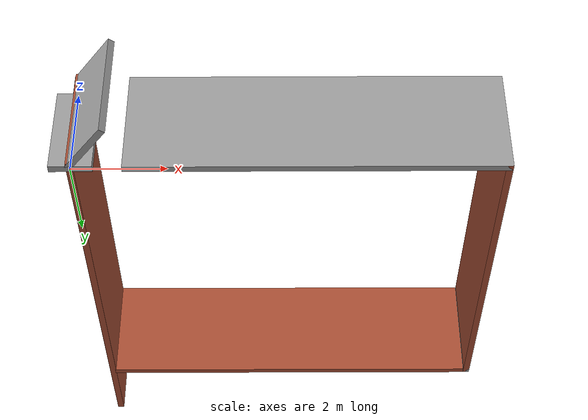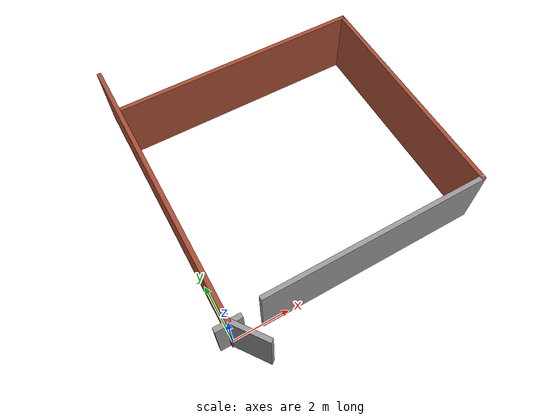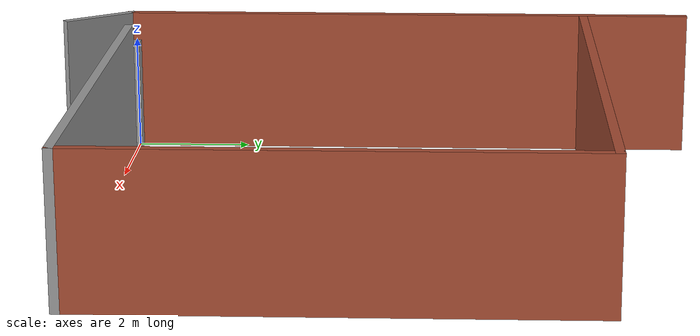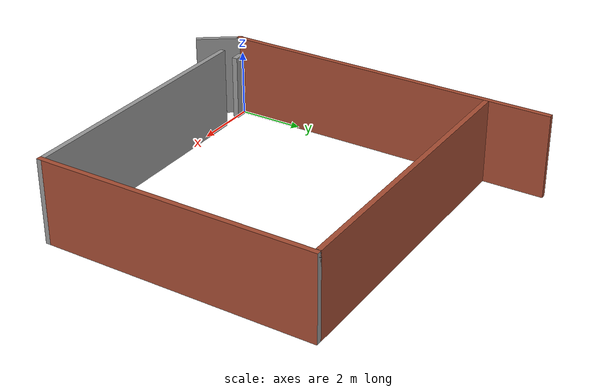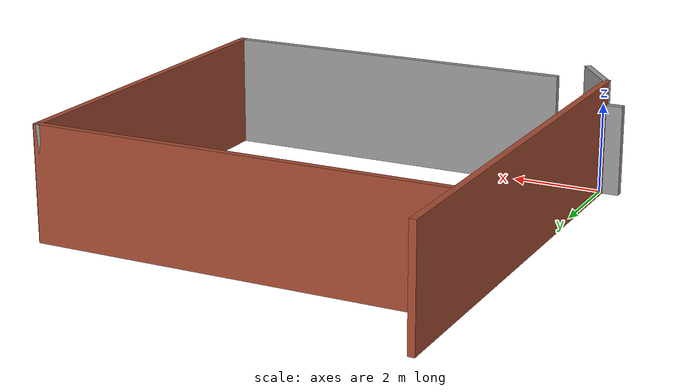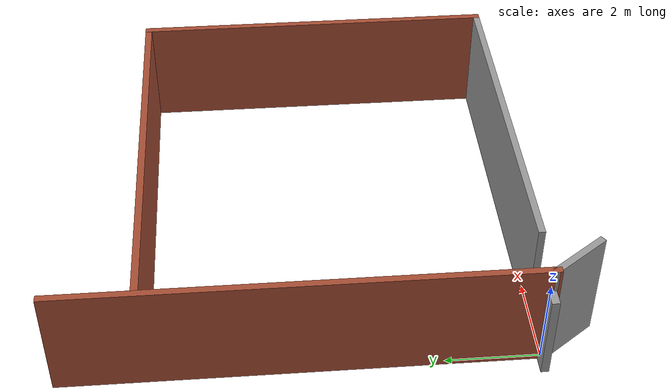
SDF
<?xml version='1.0'?>
<sdf version='1.7'>
  <model name='env_2'>
    <pose>4.46941 4.38511 0 0 -0 0</pose>
    <link name='Door_0'>
      <collision name='Door_0_Collision'>
        <geometry>
          <box>
            <size>0.9 0.17 2</size>
          </box>
        </geometry>
        <pose>0 0 1 0 -0 0</pose>
      </collision>
      <visual name='Door_0_Visual'>
        <pose>0 0 1 0 -0 0</pose>
        <geometry>
          <box>
            <size>0.9 0.17 2</size>
          </box>
        </geometry>
        <material>
          <script>
            <uri>file://media/materials/scripts/gazebo.material</uri>
            <name>Gazebo/Grey</name>
          </script>
        </material>
      </visual>
      <pose>-4.46941 -4.38511 0 0 -0 0</pose>
    </link>
    <link name='Wall_0'>
      <collision name='Wall_0_Collision'>
        <geometry>
          <box>
            <size>1.42413 0.15 2.5</size>
          </box>
        </geometry>
        <pose>0 0 1.25 0 -0 0</pose>
      </collision>
      <visual name='Wall_0_Visual'>
        <pose>0 0 1.25 0 -0 0</pose>
        <geometry>
          <box>
            <size>1.42413 0.15 2.5</size>
          </box>
        </geometry>
        <material>
          <script>
            <uri>file://media/materials/scripts/gazebo.material</uri>
            <name>Gazebo/Grey</name>
          </script>
          <ambient>1 1 1 1</ambient>
        </material>
        <meta>
          <layer>0</layer>
        </meta>
      </visual>
      <pose>-4.10441 -4.98011 0 0 -0 2.20017</pose>
    </link>
    <link name='Wall_1'>
      <collision name='Wall_1_Collision'>
        <geometry>
          <box>
            <size>10.15 0.15 2.5</size>
          </box>
        </geometry>
        <pose>0 0 1.25 0 -0 0</pose>
      </collision>
      <visual name='Wall_1_Visual'>
        <pose>0 0 1.25 0 -0 0</pose>
        <geometry>
          <box>
            <size>10.15 0.15 2.5</size>
          </box>
        </geometry>
        <material>
          <script>
            <uri>file://media/materials/scripts/gazebo.material</uri>
            <name>Gazebo/Bricks</name>
          </script>
          <ambient>0.760784 0.662745 0.627451 1</ambient>
        </material>
        <meta>
          <layer>0</layer>
        </meta>
      </visual>
      <pose>-4.47941 0.524888 0 0 -0 1.5708</pose>
    </link>
    <link name='Wall_3'>
      <collision name='Wall_3_Collision'>
        <geometry>
          <box>
            <size>9 0.15 2.5</size>
          </box>
        </geometry>
        <pose>0 0 1.25 0 -0 0</pose>
      </collision>
      <visual name='Wall_3_Visual'>
        <pose>0 0 1.25 0 -0 0</pose>
        <geometry>
          <box>
            <size>9 0.15 2.5</size>
          </box>
        </geometry>
        <material>
          <script>
            <uri>file://media/materials/scripts/gazebo.material</uri>
            <name>Gazebo/Bricks</name>
          </script>
          <ambient>1 1 1 1</ambient>
        </material>
        <meta>
          <layer>0</layer>
        </meta>
      </visual>
      <pose>0.074191 3.72851 0 0 -0 0</pose>
    </link>
    <link name='Wall_4'>
      <collision name='Wall_4_Collision'>
        <geometry>
          <box>
            <size>0.16 0.15 2.5</size>
          </box>
        </geometry>
        <pose>0 0 1.25 0 -0 0</pose>
      </collision>
      <visual name='Wall_4_Visual'>
        <pose>0 0 1.25 0 -0 0</pose>
        <geometry>
          <box>
            <size>0.16 0.15 2.5</size>
          </box>
        </geometry>
        <material>
          <script>
            <uri>file://media/materials/scripts/gazebo.material</uri>
            <name>Gazebo/Grey</name>
          </script>
          <ambient>1 1 1 1</ambient>
        </material>
        <meta>
          <layer>0</layer>
        </meta>
      </visual>
      <pose>4.50419 3.72851 0 0 -0 0</pose>
    </link>
    <link name='Wall_5'>
      <collision name='Wall_5_Collision'>
        <geometry>
          <box>
            <size>8.25 0.15 2.5</size>
          </box>
        </geometry>
        <pose>0 0 1.25 0 -0 0</pose>
      </collision>
      <visual name='Wall_5_Visual'>
        <pose>0 0 1.25 0 -0 0</pose>
        <geometry>
          <box>
            <size>8.25 0.15 2.5</size>
          </box>
        </geometry>
        <material>
          <script>
            <uri>file://media/materials/scripts/gazebo.material</uri>
            <name>Gazebo/Bricks</name>
          </script>
          <ambient>1 1 1 1</ambient>
        </material>
        <meta>
          <layer>0</layer>
        </meta>
      </visual>
      <pose>4.50919 -0.321492 0 0 -0 -1.5708</pose>
    </link>
    <link name='Wall_6'>
      <collision name='Wall_6_Collision'>
        <geometry>
          <box>
            <size>8 0.15 2.5</size>
          </box>
        </geometry>
        <pose>0 0 1.25 0 -0 0</pose>
      </collision>
      <visual name='Wall_6_Visual'>
        <pose>0 0 1.25 0 -0 0</pose>
        <geometry>
          <box>
            <size>8 0.15 2.5</size>
          </box>
        </geometry>
        <material>
          <script>
            <uri>file://media/materials/scripts/gazebo.material</uri>
            <name>Gazebo/Grey</name>
          </script>
          <ambient>1 1 1 1</ambient>
        </material>
        <meta>
          <layer>0</layer>
        </meta>
      </visual>
      <pose>0.58419 -4.37149 0 0 -0 3.14159</pose>
    </link>
    <static>1</static>
  </model>
</sdf>
